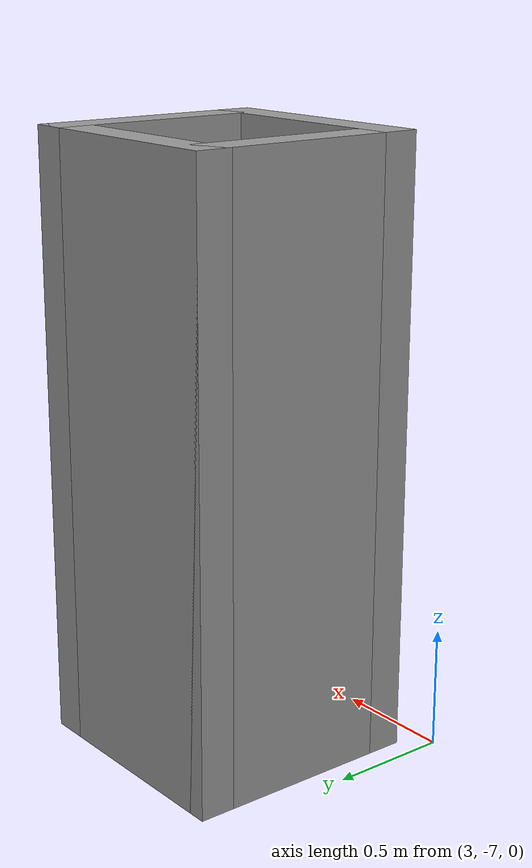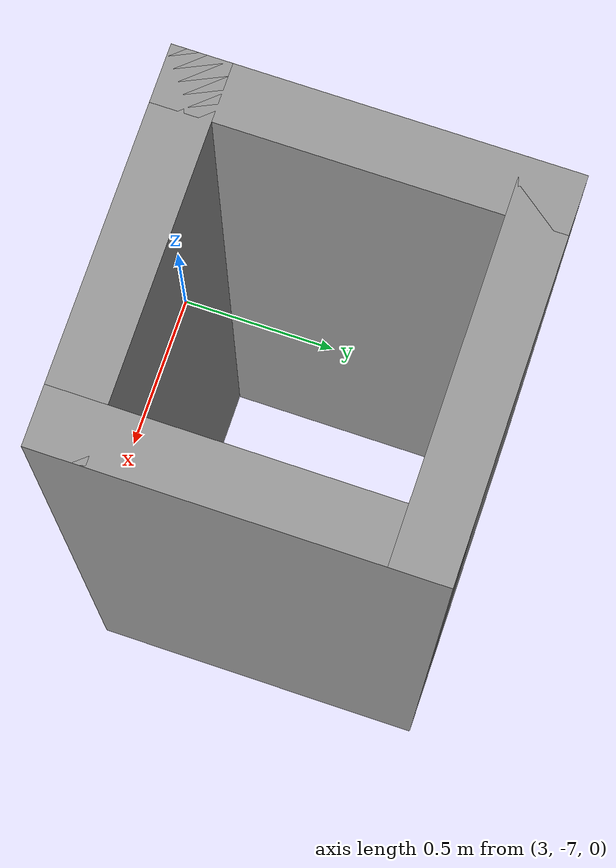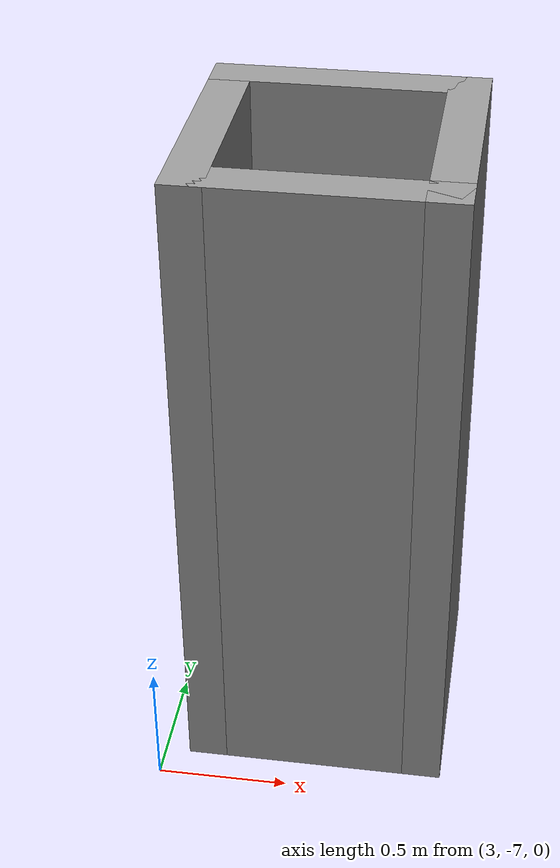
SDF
<?xml version='1.0'?>
<sdf version='1.7'>
  <model name='pillar_2_1'>

    <pose>5.0 -5.0 0.0 0 0 0</pose>

    <link name='Wall_12'>
      <collision name='Wall_12_Collision'>
        <geometry>
          <box>
            <size>1 0.15 2.5</size>
          </box>
        </geometry>
        <pose>0 0 1.25 0 -0 0</pose>
      </collision>
      <visual name='Wall_12_Visual'>
        <pose>0 0 1.25 0 -0 0</pose>
        <geometry>
          <box>
            <size>1 0.15 2.5</size>
          </box>
        </geometry>
        <material>
          <script>
            <uri>file://media/materials/scripts/gazebo.material</uri>
            <name>Gazebo/Grey</name>
          </script>
          <ambient>1 1 1 1</ambient>
        </material>
        <meta>
          <layer>0</layer>
        </meta>
      </visual>
      <pose>-1.83014 -1.3808 0 0 -0 -1.5708</pose>
    </link>
    <link name='Wall_13'>
      <collision name='Wall_13_Collision'>
        <geometry>
          <box>
            <size>1 0.15 2.5</size>
          </box>
        </geometry>
        <pose>0 0 1.25 0 -0 0</pose>
      </collision>
      <visual name='Wall_13_Visual'>
        <pose>0 0 1.25 0 -0 0</pose>
        <geometry>
          <box>
            <size>1 0.15 2.5</size>
          </box>
        </geometry>
        <material>
          <script>
            <uri>file://media/materials/scripts/gazebo.material</uri>
            <name>Gazebo/Grey</name>
          </script>
          <ambient>1 1 1 1</ambient>
        </material>
        <meta>
          <layer>0</layer>
        </meta>
      </visual>
      <pose>-1.40515 -1.8058 0 0 -0 0</pose>
    </link>
    <link name='Wall_14'>
      <collision name='Wall_14_Collision'>
        <geometry>
          <box>
            <size>1 0.15 2.5</size>
          </box>
        </geometry>
        <pose>0 0 1.25 0 -0 0</pose>
      </collision>
      <visual name='Wall_14_Visual'>
        <pose>0 0 1.25 0 -0 0</pose>
        <geometry>
          <box>
            <size>1 0.15 2.5</size>
          </box>
        </geometry>
        <material>
          <script>
            <uri>file://media/materials/scripts/gazebo.material</uri>
            <name>Gazebo/Grey</name>
          </script>
          <ambient>1 1 1 1</ambient>
        </material>
        <meta>
          <layer>0</layer>
        </meta>
      </visual>
      <pose>-0.980145 -1.3808 0 0 -0 1.5708</pose>
    </link>
    <link name='Wall_15'>
      <collision name='Wall_15_Collision'>
        <geometry>
          <box>
            <size>1 0.15 2.5</size>
          </box>
        </geometry>
        <pose>0 0 1.25 0 -0 0</pose>
      </collision>
      <visual name='Wall_15_Visual'>
        <pose>0 0 1.25 0 -0 0</pose>
        <geometry>
          <box>
            <size>1 0.15 2.5</size>
          </box>
        </geometry>
        <material>
          <script>
            <uri>file://media/materials/scripts/gazebo.material</uri>
            <name>Gazebo/Grey</name>
          </script>
          <ambient>1 1 1 1</ambient>
        </material>
        <meta>
          <layer>0</layer>
        </meta>
      </visual>
      <pose>-1.40515 -0.955801 0 0 -0 3.14159</pose>
    </link>
    <static>1</static>
  </model>
</sdf>
